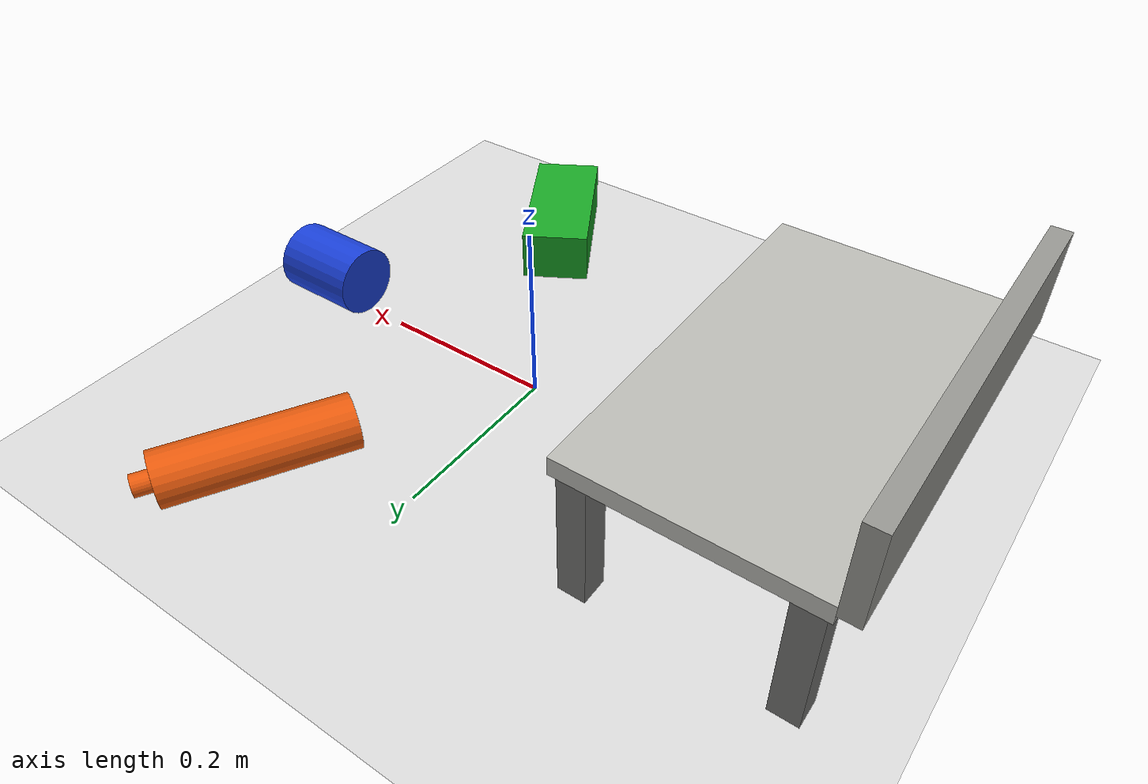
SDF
<?xml version="1.0"?>
<sdf version="1.9">
  <world name="bimanual_stationary">
    <physics name="step" type="ignored">
      <max_step_size>0.001</max_step_size>
      <real_time_factor>1.0</real_time_factor>
    </physics>
    <plugin filename="gz-sim-physics-system" name="gz::sim::systems::Physics"/>
    <plugin filename="gz-sim-user-commands-system" name="gz::sim::systems::UserCommands"/>
    <plugin filename="gz-sim-scene-broadcaster-system" name="gz::sim::systems::SceneBroadcaster"/>
    <plugin filename="gz-sim-sensors-system" name="gz::sim::systems::Sensors">
      <render_engine>ogre2</render_engine>
    </plugin>

    <light type="directional" name="sun">
      <cast_shadows>true</cast_shadows>
      <pose>0 0 10 0 0 0</pose>
      <diffuse>0.9 0.9 0.9 1</diffuse>
      <specular>0.2 0.2 0.2 1</specular>
      <direction>-0.4 0.2 -0.9</direction>
    </light>

    <model name="ground_plane">
      <static>true</static>
      <link name="link">
        <collision name="col">
          <geometry><plane><normal>0 0 1</normal><size>6 6</size></plane></geometry>
          <surface><friction><ode><mu>1.0</mu><mu2>1.0</mu2></ode></friction></surface>
        </collision>
        <visual name="vis">
          <geometry><plane><normal>0 0 1</normal><size>6 6</size></plane></geometry>
          <material><ambient>0.85 0.85 0.85 1</ambient><diffuse>0.85 0.85 0.85 1</diffuse></material>
        </visual>
      </link>
    </model>

    <!-- Shelf centre is exactly one grasp radius behind the spawn point.
         Its three drop slots lie on the r=0.30 m arc across the slab. -->
    <include>
      <uri>model://stationary_shelf</uri>
      <name>stationary_shelf</name>
      <pose>-0.30 0 0 0 0 0</pose>
    </include>

    <!-- All objects start at r=0.30 m with their long axes radial.  Their
         order around the base is chosen so every loaded CCW turn has a clear
         sweep to the shelf. -->
    <include>
      <uri>model://bottle</uri>
      <name>bottle</name>
      <pose>0.150000 0.259808 0.031 0 1.5708 1.0472</pose>
    </include>
    <include>
      <uri>model://bowl</uri>
      <name>bowl</name>
      <pose>0.300000 0.000000 0.041 0 1.5708 0.0000</pose>
    </include>
    <include>
      <uri>model://cracker_box</uri>
      <name>cracker_box</name>
      <pose>0.150000 -0.259808 0.031 0 1.5708 -1.0472</pose>
    </include>
  </world>
</sdf>

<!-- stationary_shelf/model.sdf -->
<sdf version="1.9">
  <model name="stationary_shelf">
    <static>true</static>
    <link name="link">
      <!-- The 0.17 m top clears both the 0.125 m base and 0.14 m deck
           during in-place turns. -->
      <collision name="slab_col">
        <pose>0 0 0.16 0 0 0</pose>
        <geometry><box><size>0.25 0.42 0.02</size></box></geometry>
        <surface>
          <friction><ode><mu>1.0</mu><mu2>1.0</mu2></ode></friction>
        </surface>
      </collision>
      <visual name="slab_vis">
        <pose>0 0 0.16 0 0 0</pose>
        <geometry><box><size>0.25 0.42 0.02</size></box></geometry>
        <material>
          <ambient>0.72 0.72 0.70 1</ambient>
          <diffuse>0.72 0.72 0.70 1</diffuse>
        </material>
      </visual>

      <!-- Four narrow legs stay outside the base's 0.1775 m radius. -->
      <collision name="leg1_col"><pose>0.105 0.19 0.075 0 0 0</pose><geometry><box><size>0.03 0.03 0.15</size></box></geometry></collision>
      <visual name="leg1_vis"><pose>0.105 0.19 0.075 0 0 0</pose><geometry><box><size>0.03 0.03 0.15</size></box></geometry><material><ambient>0.45 0.45 0.44 1</ambient><diffuse>0.45 0.45 0.44 1</diffuse></material></visual>
      <collision name="leg2_col"><pose>0.105 -0.19 0.075 0 0 0</pose><geometry><box><size>0.03 0.03 0.15</size></box></geometry></collision>
      <visual name="leg2_vis"><pose>0.105 -0.19 0.075 0 0 0</pose><geometry><box><size>0.03 0.03 0.15</size></box></geometry><material><ambient>0.45 0.45 0.44 1</ambient><diffuse>0.45 0.45 0.44 1</diffuse></material></visual>
      <collision name="leg3_col"><pose>-0.105 0.19 0.075 0 0 0</pose><geometry><box><size>0.03 0.03 0.15</size></box></geometry></collision>
      <visual name="leg3_vis"><pose>-0.105 0.19 0.075 0 0 0</pose><geometry><box><size>0.03 0.03 0.15</size></box></geometry><material><ambient>0.45 0.45 0.44 1</ambient><diffuse>0.45 0.45 0.44 1</diffuse></material></visual>
      <collision name="leg4_col"><pose>-0.105 -0.19 0.075 0 0 0</pose><geometry><box><size>0.03 0.03 0.15</size></box></geometry></collision>
      <visual name="leg4_vis"><pose>-0.105 -0.19 0.075 0 0 0</pose><geometry><box><size>0.03 0.03 0.15</size></box></geometry><material><ambient>0.45 0.45 0.44 1</ambient><diffuse>0.45 0.45 0.44 1</diffuse></material></visual>

      <!-- Short back lip: enough to read visually, below the tucked-arm
           sweep and deliberately not used for LiDAR docking. -->
      <collision name="back_col">
        <pose>-0.135 0 0.21 0 0 0</pose>
        <geometry><box><size>0.02 0.42 0.10</size></box></geometry>
      </collision>
      <visual name="back_vis">
        <pose>-0.135 0 0.21 0 0 0</pose>
        <geometry><box><size>0.02 0.42 0.10</size></box></geometry>
        <material>
          <ambient>0.58 0.58 0.56 1</ambient>
          <diffuse>0.58 0.58 0.56 1</diffuse>
        </material>
      </visual>
    </link>
  </model>
</sdf>

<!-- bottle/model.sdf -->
<sdf version="1.9">
  <model name="bottle">
    <link name="link">
      <inertial>
        <mass>0.15</mass>
        <inertia>
          <ixx>5.34e-4</ixx><iyy>5.34e-4</iyy><izz>6.75e-5</izz>
          <ixy>0</ixy><ixz>0</ixz><iyz>0</iyz>
        </inertia>
      </inertial>
      <collision name="col">
        <geometry><cylinder><radius>0.03</radius><length>0.20</length></cylinder></geometry>
        <surface>
          <friction><ode><mu>1.2</mu><mu2>1.2</mu2></ode></friction>
        </surface>
      </collision>
      <visual name="body">
        <geometry><cylinder><radius>0.03</radius><length>0.20</length></cylinder></geometry>
        <material>
          <ambient>0.9 0.35 0.05 1</ambient>
          <diffuse>0.9 0.35 0.05 1</diffuse>
          <specular>0.3 0.3 0.3 1</specular>
        </material>
      </visual>
      <visual name="cap">
        <pose>0 0 0.11 0 0 0</pose>
        <geometry><cylinder><radius>0.012</radius><length>0.02</length></cylinder></geometry>
        <material>
          <ambient>0.9 0.35 0.05 1</ambient>
          <diffuse>0.9 0.35 0.05 1</diffuse>
        </material>
      </visual>
    </link>
  </model>
</sdf>

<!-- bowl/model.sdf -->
<sdf version="1.9">
  <model name="bowl">
    <link name="link">
      <inertial>
        <mass>0.20</mass>
        <inertia>
          <ixx>2.47e-4</ixx><iyy>2.47e-4</iyy><izz>1.6e-4</izz>
          <ixy>0</ixy><ixz>0</ixz><iyz>0</iyz>
        </inertia>
      </inertial>
      <collision name="col">
        <geometry><cylinder><radius>0.04</radius><length>0.10</length></cylinder></geometry>
        <surface>
          <friction><ode><mu>1.2</mu><mu2>1.2</mu2></ode></friction>
        </surface>
      </collision>
      <visual name="body">
        <geometry><cylinder><radius>0.04</radius><length>0.10</length></cylinder></geometry>
        <material>
          <ambient>0.1 0.25 0.85 1</ambient>
          <diffuse>0.1 0.25 0.85 1</diffuse>
          <specular>0.3 0.3 0.3 1</specular>
        </material>
      </visual>
      <visual name="rim">
        <pose>0 0 0.051 0 0 0</pose>
        <geometry><cylinder><radius>0.036</radius><length>0.004</length></cylinder></geometry>
        <material>
          <ambient>0.05 0.12 0.5 1</ambient>
          <diffuse>0.05 0.12 0.5 1</diffuse>
        </material>
      </visual>
    </link>
  </model>
</sdf>

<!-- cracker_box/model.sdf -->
<sdf version="1.9">
  <model name="cracker_box">
    <link name="link">
      <inertial>
        <mass>0.25</mass>
        <inertia>
          <ixx>8.08e-4</ixx><iyy>7.50e-4</iyy><izz>2.08e-4</izz>
          <ixy>0</ixy><ixz>0</ixz><iyz>0</iyz>
        </inertia>
      </inertial>
      <collision name="col">
        <geometry><box><size>0.06 0.08 0.18</size></box></geometry>
        <surface>
          <friction><ode><mu>1.2</mu><mu2>1.2</mu2></ode></friction>
        </surface>
      </collision>
      <visual name="body">
        <geometry><box><size>0.06 0.08 0.18</size></box></geometry>
        <material>
          <ambient>0.1 0.65 0.15 1</ambient>
          <diffuse>0.1 0.65 0.15 1</diffuse>
          <specular>0.2 0.2 0.2 1</specular>
        </material>
      </visual>
    </link>
  </model>
</sdf>
